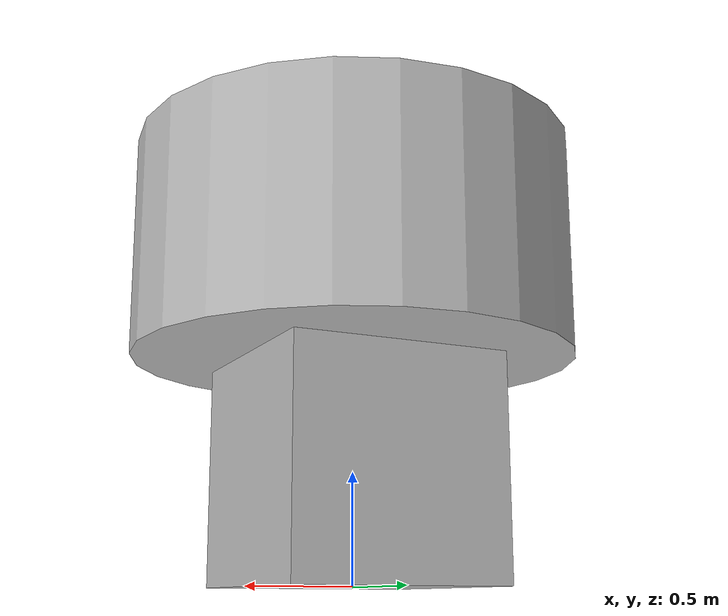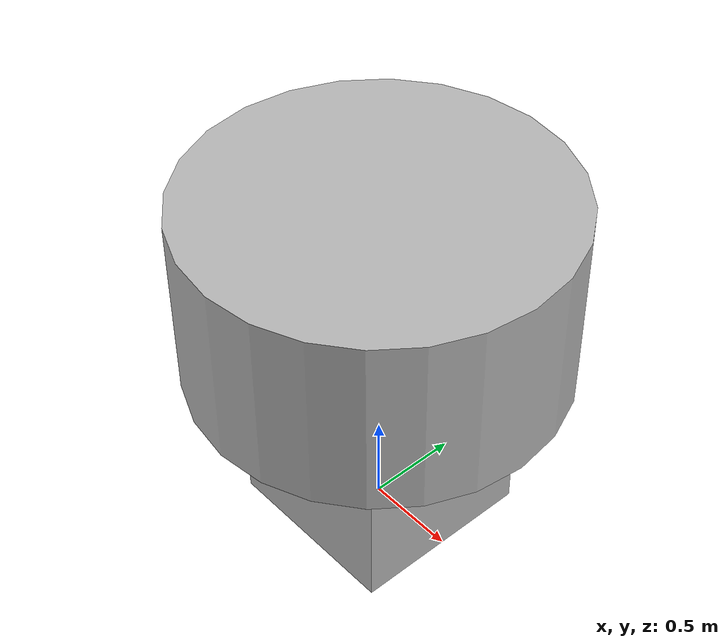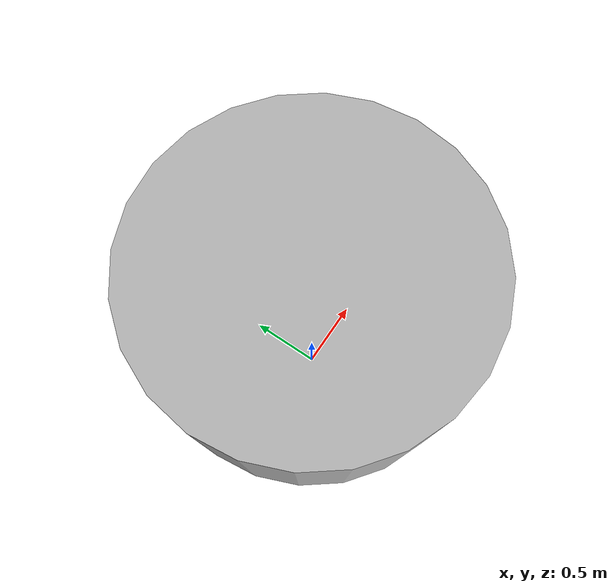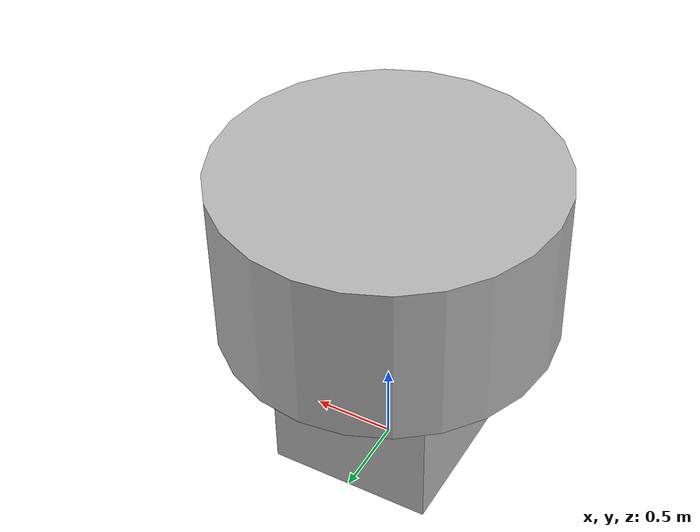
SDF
<?xml version="1.0"?>
<sdf version="1.4">
    <model name="box_model">
        <pose>0 0 0.5 0 0 0</pose>
        <static>false</static>
        <link name="link">
            <inertial>
                <mass>1.0</mass>
                <inertia>
                    <ixx>0.083</ixx>
                    <ixy>0.0</ixy>
                    <ixz>0.0</ixz>
                    <iyy>0.083</iyy>
                    <iyz>0.0</iyz>
                    <izz>0.083</izz>
                </inertia>
            </inertial>
            <collision name="collision">
                <geometry>
                    <box>
                        <size>1 1 1</size>
                    </box>
                </geometry>
            </collision>
            <visual name="visual">
                <geometry>
                    <box>
                        <size>1 1 1</size>
                    </box>
                </geometry>
            </visual>
            <visual name="visual2">
                <pose>0 0 1 0 0 0</pose>
                <geometry>
                    <cylinder raduis="0.25" length="1.5"/>
                </geometry>
            </visual>
        </link>
    </model>
</sdf>
